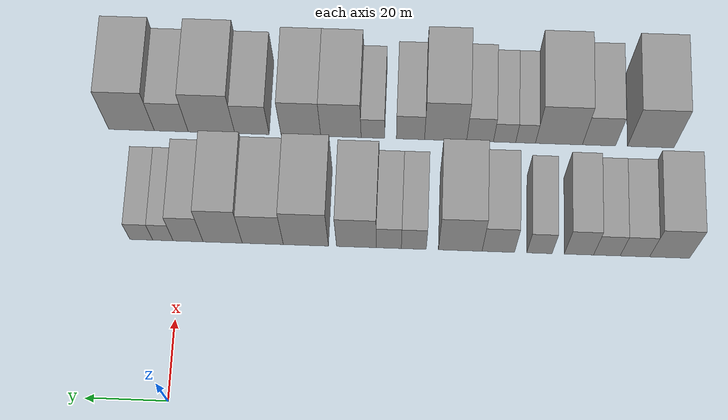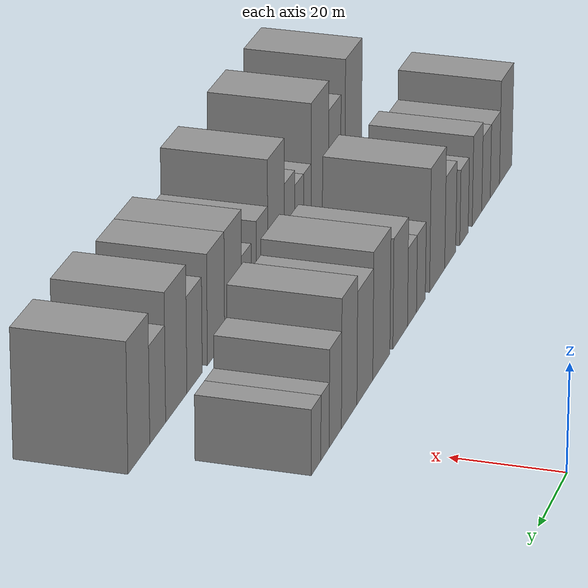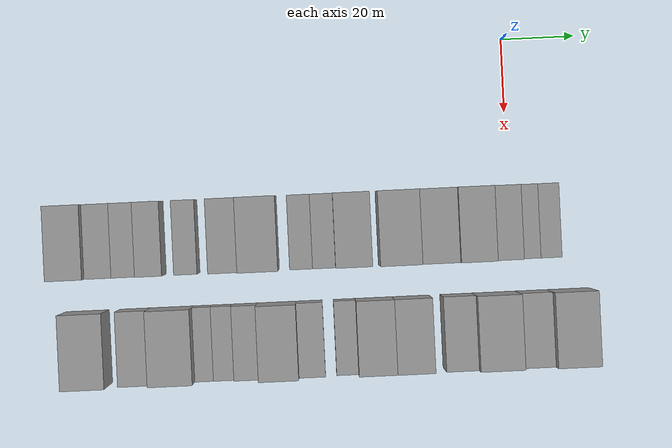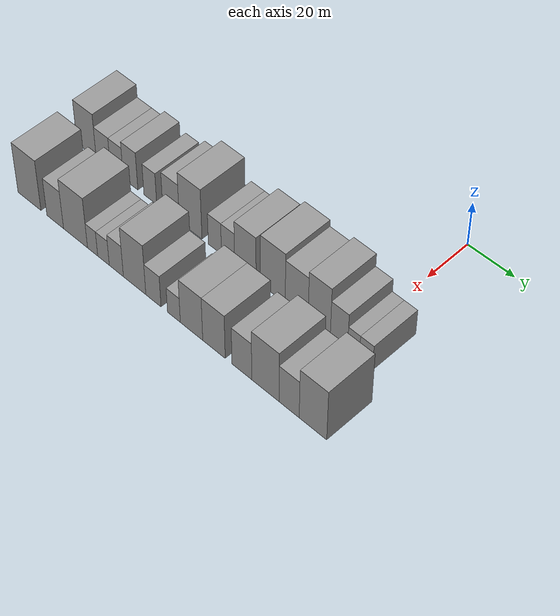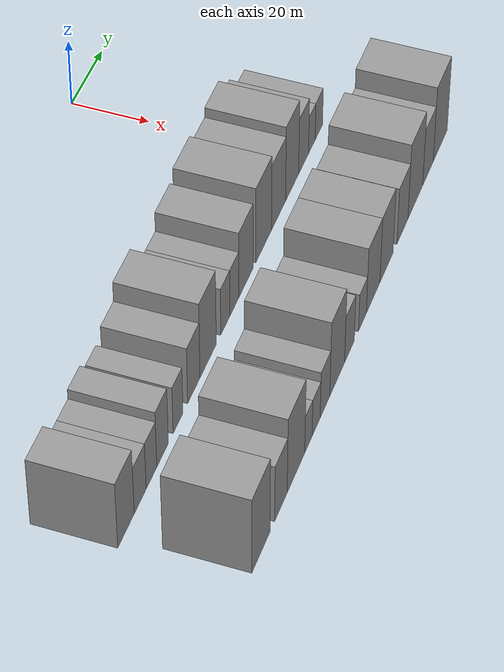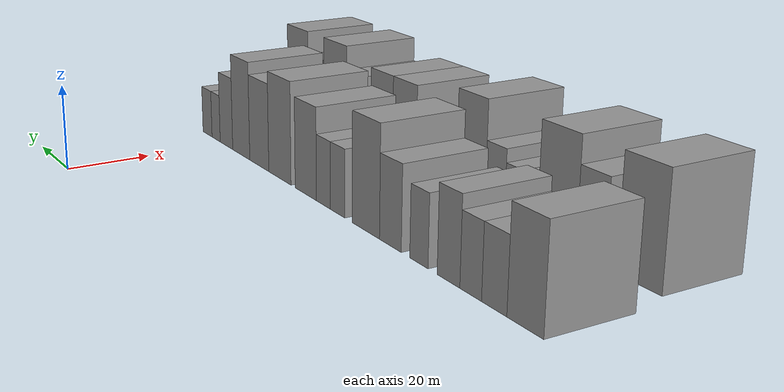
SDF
<sdf version="1.6">
 <world name="default">
  <model name="building_14">
   <static>1</static>
   <pose>50.0000 -120.3150 0 0.000000 0.000000 0.000000</pose>
   <link name="link">
    <pose>0 0 10.50 0 0 0</pose>
    <collision name="collision"><geometry><box><size>20.0000 9.8462 21.0000</size></box></geometry></collision>
    <visual name="visual">
     <cast_shadows>0</cast_shadows>
     <geometry><box><size>20.0000 9.8462 21.0000</size></box></geometry>
     <material>
      <script>
       <uri>model://grey_wall/materials/scripts</uri>
       <uri>model://grey_wall/materials/textures</uri>
       <name>vrc/grey_wall</name>
      </script>
     </material>
    </visual>
   </link>
  </model>
  <model name="building_15">
   <static>1</static>
   <pose>50.0000 -111.7804 0 0.000000 0.000000 0.000000</pose>
   <link name="link">
    <pose>0 0 7.50 0 0 0</pose>
    <collision name="collision"><geometry><box><size>20.0000 7.2230 15.0000</size></box></geometry></collision>
    <visual name="visual">
     <cast_shadows>0</cast_shadows>
     <geometry><box><size>20.0000 7.2230 15.0000</size></box></geometry>
     <material>
      <script>
       <uri>model://grey_wall/materials/scripts</uri>
       <uri>model://grey_wall/materials/textures</uri>
       <name>vrc/grey_wall</name>
      </script>
     </material>
    </visual>
   </link>
  </model>
  <model name="building_16">
   <static>1</static>
   <pose>50.0000 -104.9020 0 0.000000 0.000000 0.000000</pose>
   <link name="link">
    <pose>0 0 7.50 0 0 0</pose>
    <collision name="collision"><geometry><box><size>20.0000 6.5338 15.0000</size></box></geometry></collision>
    <visual name="visual">
     <cast_shadows>0</cast_shadows>
     <geometry><box><size>20.0000 6.5338 15.0000</size></box></geometry>
     <material>
      <script>
       <uri>model://grey_wall/materials/scripts</uri>
       <uri>model://grey_wall/materials/textures</uri>
       <name>vrc/grey_wall</name>
      </script>
     </material>
    </visual>
   </link>
  </model>
  <model name="building_17">
   <static>1</static>
   <pose>50.0000 -98.0287 0 0.000000 0.000000 0.000000</pose>
   <link name="link">
    <pose>0 0 9.00 0 0 0</pose>
    <collision name="collision"><geometry><box><size>20.0000 7.2128 18.0000</size></box></geometry></collision>
    <visual name="visual">
     <cast_shadows>0</cast_shadows>
     <geometry><box><size>20.0000 7.2128 18.0000</size></box></geometry>
     <material>
      <script>
       <uri>model://grey_wall/materials/scripts</uri>
       <uri>model://grey_wall/materials/textures</uri>
       <name>vrc/grey_wall</name>
      </script>
     </material>
    </visual>
   </link>
  </model>
  <model name="building_18">
   <static>1</static>
   <pose>50.0000 -88.2988 0 0.000000 0.000000 0.000000</pose>
   <link name="link">
    <pose>0 0 7.50 0 0 0</pose>
    <collision name="collision"><geometry><box><size>20.0000 6.2469 15.0000</size></box></geometry></collision>
    <visual name="visual">
     <cast_shadows>0</cast_shadows>
     <geometry><box><size>20.0000 6.2469 15.0000</size></box></geometry>
     <material>
      <script>
       <uri>model://grey_wall/materials/scripts</uri>
       <uri>model://grey_wall/materials/textures</uri>
       <name>vrc/grey_wall</name>
      </script>
     </material>
    </visual>
   </link>
  </model>
  <model name="building_19">
   <static>1</static>
   <pose>50.0000 -78.1721 0 0.000000 0.000000 0.000000</pose>
   <link name="link">
    <pose>0 0 9.00 0 0 0</pose>
    <collision name="collision"><geometry><box><size>20.0000 8.0066 18.0000</size></box></geometry></collision>
    <visual name="visual">
     <cast_shadows>0</cast_shadows>
     <geometry><box><size>20.0000 8.0066 18.0000</size></box></geometry>
     <material>
      <script>
       <uri>model://grey_wall/materials/scripts</uri>
       <uri>model://grey_wall/materials/textures</uri>
       <name>vrc/grey_wall</name>
      </script>
     </material>
    </visual>
   </link>
  </model>
  <model name="building_20">
   <static>1</static>
   <pose>50.0000 -68.7891 0 0.000000 0.000000 0.000000</pose>
   <link name="link">
    <pose>0 0 12.00 0 0 0</pose>
    <collision name="collision"><geometry><box><size>20.0000 10.7592 24.0000</size></box></geometry></collision>
    <visual name="visual">
     <cast_shadows>0</cast_shadows>
     <geometry><box><size>20.0000 10.7592 24.0000</size></box></geometry>
     <material>
      <script>
       <uri>model://grey_wall/materials/scripts</uri>
       <uri>model://grey_wall/materials/textures</uri>
       <name>vrc/grey_wall</name>
      </script>
     </material>
    </visual>
   </link>
  </model>
  <model name="building_21">
   <static>1</static>
   <pose>50.0000 -57.3385 0 0.000000 0.000000 0.000000</pose>
   <link name="link">
    <pose>0 0 7.50 0 0 0</pose>
    <collision name="collision"><geometry><box><size>20.0000 6.1420 15.0000</size></box></geometry></collision>
    <visual name="visual">
     <cast_shadows>0</cast_shadows>
     <geometry><box><size>20.0000 6.1420 15.0000</size></box></geometry>
     <material>
      <script>
       <uri>model://grey_wall/materials/scripts</uri>
       <uri>model://grey_wall/materials/textures</uri>
       <name>vrc/grey_wall</name>
      </script>
     </material>
    </visual>
   </link>
  </model>
  <model name="building_22">
   <static>1</static>
   <pose>50.0000 -51.1925 0 0.000000 0.000000 0.000000</pose>
   <link name="link">
    <pose>0 0 7.50 0 0 0</pose>
    <collision name="collision"><geometry><box><size>20.0000 6.1499 15.0000</size></box></geometry></collision>
    <visual name="visual">
     <cast_shadows>0</cast_shadows>
     <geometry><box><size>20.0000 6.1499 15.0000</size></box></geometry>
     <material>
      <script>
       <uri>model://grey_wall/materials/scripts</uri>
       <uri>model://grey_wall/materials/textures</uri>
       <name>vrc/grey_wall</name>
      </script>
     </material>
    </visual>
   </link>
  </model>
  <model name="building_23">
   <static>1</static>
   <pose>50.0000 -43.2024 0 0.000000 0.000000 0.000000</pose>
   <link name="link">
    <pose>0 0 10.50 0 0 0</pose>
    <collision name="collision"><geometry><box><size>20.0000 9.8303 21.0000</size></box></geometry></collision>
    <visual name="visual">
     <cast_shadows>0</cast_shadows>
     <geometry><box><size>20.0000 9.8303 21.0000</size></box></geometry>
     <material>
      <script>
       <uri>model://grey_wall/materials/scripts</uri>
       <uri>model://grey_wall/materials/textures</uri>
       <name>vrc/grey_wall</name>
      </script>
     </material>
    </visual>
   </link>
  </model>
  <model name="building_24">
   <static>1</static>
   <pose>50.0000 -30.7148 0 0.000000 0.000000 0.000000</pose>
   <link name="link">
    <pose>0 0 12.00 0 0 0</pose>
    <collision name="collision"><geometry><box><size>20.0000 11.1449 24.0000</size></box></geometry></collision>
    <visual name="visual">
     <cast_shadows>0</cast_shadows>
     <geometry><box><size>20.0000 11.1449 24.0000</size></box></geometry>
     <material>
      <script>
       <uri>model://grey_wall/materials/scripts</uri>
       <uri>model://grey_wall/materials/textures</uri>
       <name>vrc/grey_wall</name>
      </script>
     </material>
    </visual>
   </link>
  </model>
  <model name="building_25">
   <static>1</static>
   <pose>50.0000 -20.0643 0 0.000000 0.000000 0.000000</pose>
   <link name="link">
    <pose>0 0 10.50 0 0 0</pose>
    <collision name="collision"><geometry><box><size>20.0000 10.1560 21.0000</size></box></geometry></collision>
    <visual name="visual">
     <cast_shadows>0</cast_shadows>
     <geometry><box><size>20.0000 10.1560 21.0000</size></box></geometry>
     <material>
      <script>
       <uri>model://grey_wall/materials/scripts</uri>
       <uri>model://grey_wall/materials/textures</uri>
       <name>vrc/grey_wall</name>
      </script>
     </material>
    </visual>
   </link>
  </model>
  <model name="building_26">
   <static>1</static>
   <pose>50.0000 -10.1497 0 0.000000 0.000000 0.000000</pose>
   <link name="link">
    <pose>0 0 12.00 0 0 0</pose>
    <collision name="collision"><geometry><box><size>20.0000 9.6733 24.0000</size></box></geometry></collision>
    <visual name="visual">
     <cast_shadows>0</cast_shadows>
     <geometry><box><size>20.0000 9.6733 24.0000</size></box></geometry>
     <material>
      <script>
       <uri>model://grey_wall/materials/scripts</uri>
       <uri>model://grey_wall/materials/textures</uri>
       <name>vrc/grey_wall</name>
      </script>
     </material>
    </visual>
   </link>
  </model>
  <model name="building_27">
   <static>1</static>
   <pose>50.0000 -1.5976 0 0.000000 0.000000 0.000000</pose>
   <link name="link">
    <pose>0 0 9.00 0 0 0</pose>
    <collision name="collision"><geometry><box><size>20.0000 7.4308 18.0000</size></box></geometry></collision>
    <visual name="visual">
     <cast_shadows>0</cast_shadows>
     <geometry><box><size>20.0000 7.4308 18.0000</size></box></geometry>
     <material>
      <script>
       <uri>model://grey_wall/materials/scripts</uri>
       <uri>model://grey_wall/materials/textures</uri>
       <name>vrc/grey_wall</name>
      </script>
     </material>
    </visual>
   </link>
  </model>
  <model name="building_28">
   <static>1</static>
   <pose>50.0000 4.6349 0 0.000000 0.000000 0.000000</pose>
   <link name="link">
    <pose>0 0 6.00 0 0 0</pose>
    <collision name="collision"><geometry><box><size>20.0000 5.0342 12.0000</size></box></geometry></collision>
    <visual name="visual">
     <cast_shadows>0</cast_shadows>
     <geometry><box><size>20.0000 5.0342 12.0000</size></box></geometry>
     <material>
      <script>
       <uri>model://grey_wall/materials/scripts</uri>
       <uri>model://grey_wall/materials/textures</uri>
       <name>vrc/grey_wall</name>
      </script>
     </material>
    </visual>
   </link>
  </model>
  <model name="building_29">
   <static>1</static>
   <pose>50.0000 9.9856 0 0.000000 0.000000 0.000000</pose>
   <link name="link">
    <pose>0 0 6.00 0 0 0</pose>
    <collision name="collision"><geometry><box><size>20.0000 5.6673 12.0000</size></box></geometry></collision>
    <visual name="visual">
     <cast_shadows>0</cast_shadows>
     <geometry><box><size>20.0000 5.6673 12.0000</size></box></geometry>
     <material>
      <script>
       <uri>model://grey_wall/materials/scripts</uri>
       <uri>model://grey_wall/materials/textures</uri>
       <name>vrc/grey_wall</name>
      </script>
     </material>
    </visual>
   </link>
  </model>
  <model name="building_80">
   <static>1</static>
   <pose>79.0000 -116.3509 0 0.000000 0.000000 0.000000</pose>
   <link name="link">
    <pose>0 0 12.00 0 0 0</pose>
    <collision name="collision"><geometry><box><size>20.0000 11.7347 24.0000</size></box></geometry></collision>
    <visual name="visual">
     <cast_shadows>0</cast_shadows>
     <geometry><box><size>20.0000 11.7347 24.0000</size></box></geometry>
     <material>
      <script>
       <uri>model://grey_wall/materials/scripts</uri>
       <uri>model://grey_wall/materials/textures</uri>
       <name>vrc/grey_wall</name>
      </script>
     </material>
    </visual>
   </link>
  </model>
  <model name="building_81">
   <static>1</static>
   <pose>79.0000 -103.3023 0 0.000000 0.000000 0.000000</pose>
   <link name="link">
    <pose>0 0 9.00 0 0 0</pose>
    <collision name="collision"><geometry><box><size>20.0000 8.3624 18.0000</size></box></geometry></collision>
    <visual name="visual">
     <cast_shadows>0</cast_shadows>
     <geometry><box><size>20.0000 8.3624 18.0000</size></box></geometry>
     <material>
      <script>
       <uri>model://grey_wall/materials/scripts</uri>
       <uri>model://grey_wall/materials/textures</uri>
       <name>vrc/grey_wall</name>
      </script>
     </material>
    </visual>
   </link>
  </model>
  <model name="building_82">
   <static>1</static>
   <pose>79.0000 -93.1857 0 0.000000 0.000000 0.000000</pose>
   <link name="link">
    <pose>0 0 12.00 0 0 0</pose>
    <collision name="collision"><geometry><box><size>20.0000 11.8708 24.0000</size></box></geometry></collision>
    <visual name="visual">
     <cast_shadows>0</cast_shadows>
     <geometry><box><size>20.0000 11.8708 24.0000</size></box></geometry>
     <material>
      <script>
       <uri>model://grey_wall/materials/scripts</uri>
       <uri>model://grey_wall/materials/textures</uri>
       <name>vrc/grey_wall</name>
      </script>
     </material>
    </visual>
   </link>
  </model>
  <model name="building_83">
   <static>1</static>
   <pose>79.0000 -84.7539 0 0.000000 0.000000 0.000000</pose>
   <link name="link">
    <pose>0 0 6.00 0 0 0</pose>
    <collision name="collision"><geometry><box><size>20.0000 4.9928 12.0000</size></box></geometry></collision>
    <visual name="visual">
     <cast_shadows>0</cast_shadows>
     <geometry><box><size>20.0000 4.9928 12.0000</size></box></geometry>
     <material>
      <script>
       <uri>model://grey_wall/materials/scripts</uri>
       <uri>model://grey_wall/materials/textures</uri>
       <name>vrc/grey_wall</name>
      </script>
     </material>
    </visual>
   </link>
  </model>
  <model name="building_84">
   <static>1</static>
   <pose>79.0000 -79.4468 0 0.000000 0.000000 0.000000</pose>
   <link name="link">
    <pose>0 0 6.00 0 0 0</pose>
    <collision name="collision"><geometry><box><size>20.0000 5.6214 12.0000</size></box></geometry></collision>
    <visual name="visual">
     <cast_shadows>0</cast_shadows>
     <geometry><box><size>20.0000 5.6214 12.0000</size></box></geometry>
     <material>
      <script>
       <uri>model://grey_wall/materials/scripts</uri>
       <uri>model://grey_wall/materials/textures</uri>
       <name>vrc/grey_wall</name>
      </script>
     </material>
    </visual>
   </link>
  </model>
  <model name="building_85">
   <static>1</static>
   <pose>79.0000 -73.2430 0 0.000000 0.000000 0.000000</pose>
   <link name="link">
    <pose>0 0 7.50 0 0 0</pose>
    <collision name="collision"><geometry><box><size>20.0000 6.7861 15.0000</size></box></geometry></collision>
    <visual name="visual">
     <cast_shadows>0</cast_shadows>
     <geometry><box><size>20.0000 6.7861 15.0000</size></box></geometry>
     <material>
      <script>
       <uri>model://grey_wall/materials/scripts</uri>
       <uri>model://grey_wall/materials/textures</uri>
       <name>vrc/grey_wall</name>
      </script>
     </material>
    </visual>
   </link>
  </model>
  <model name="building_86">
   <static>1</static>
   <pose>79.0000 -64.5287 0 0.000000 0.000000 0.000000</pose>
   <link name="link">
    <pose>0 0 12.00 0 0 0</pose>
    <collision name="collision"><geometry><box><size>20.0000 10.6425 24.0000</size></box></geometry></collision>
    <visual name="visual">
     <cast_shadows>0</cast_shadows>
     <geometry><box><size>20.0000 10.6425 24.0000</size></box></geometry>
     <material>
      <script>
       <uri>model://grey_wall/materials/scripts</uri>
       <uri>model://grey_wall/materials/textures</uri>
       <name>vrc/grey_wall</name>
      </script>
     </material>
    </visual>
   </link>
  </model>
  <model name="building_87">
   <static>1</static>
   <pose>79.0000 -55.6554 0 0.000000 0.000000 0.000000</pose>
   <link name="link">
    <pose>0 0 7.50 0 0 0</pose>
    <collision name="collision"><geometry><box><size>20.0000 7.1042 15.0000</size></box></geometry></collision>
    <visual name="visual">
     <cast_shadows>0</cast_shadows>
     <geometry><box><size>20.0000 7.1042 15.0000</size></box></geometry>
     <material>
      <script>
       <uri>model://grey_wall/materials/scripts</uri>
       <uri>model://grey_wall/materials/textures</uri>
       <name>vrc/grey_wall</name>
      </script>
     </material>
    </visual>
   </link>
  </model>
  <model name="building_88">
   <static>1</static>
   <pose>79.0000 -46.1413 0 0.000000 0.000000 0.000000</pose>
   <link name="link">
    <pose>0 0 6.00 0 0 0</pose>
    <collision name="collision"><geometry><box><size>20.0000 5.9240 12.0000</size></box></geometry></collision>
    <visual name="visual">
     <cast_shadows>0</cast_shadows>
     <geometry><box><size>20.0000 5.9240 12.0000</size></box></geometry>
     <material>
      <script>
       <uri>model://grey_wall/materials/scripts</uri>
       <uri>model://grey_wall/materials/textures</uri>
       <name>vrc/grey_wall</name>
      </script>
     </material>
    </visual>
   </link>
  </model>
  <model name="building_89">
   <static>1</static>
   <pose>79.0000 -38.0681 0 0.000000 0.000000 0.000000</pose>
   <link name="link">
    <pose>0 0 10.50 0 0 0</pose>
    <collision name="collision"><geometry><box><size>20.0000 10.2223 21.0000</size></box></geometry></collision>
    <visual name="visual">
     <cast_shadows>0</cast_shadows>
     <geometry><box><size>20.0000 10.2223 21.0000</size></box></geometry>
     <material>
      <script>
       <uri>model://grey_wall/materials/scripts</uri>
       <uri>model://grey_wall/materials/textures</uri>
       <name>vrc/grey_wall</name>
      </script>
     </material>
    </visual>
   </link>
  </model>
  <model name="building_90">
   <static>1</static>
   <pose>79.0000 -27.9151 0 0.000000 0.000000 0.000000</pose>
   <link name="link">
    <pose>0 0 10.50 0 0 0</pose>
    <collision name="collision"><geometry><box><size>20.0000 10.0837 21.0000</size></box></geometry></collision>
    <visual name="visual">
     <cast_shadows>0</cast_shadows>
     <geometry><box><size>20.0000 10.0837 21.0000</size></box></geometry>
     <material>
      <script>
       <uri>model://grey_wall/materials/scripts</uri>
       <uri>model://grey_wall/materials/textures</uri>
       <name>vrc/grey_wall</name>
      </script>
     </material>
    </visual>
   </link>
  </model>
  <model name="building_91">
   <static>1</static>
   <pose>79.0000 -15.5219 0 0.000000 0.000000 0.000000</pose>
   <link name="link">
    <pose>0 0 9.00 0 0 0</pose>
    <collision name="collision"><geometry><box><size>20.0000 8.7028 18.0000</size></box></geometry></collision>
    <visual name="visual">
     <cast_shadows>0</cast_shadows>
     <geometry><box><size>20.0000 8.7028 18.0000</size></box></geometry>
     <material>
      <script>
       <uri>model://grey_wall/materials/scripts</uri>
       <uri>model://grey_wall/materials/textures</uri>
       <name>vrc/grey_wall</name>
      </script>
     </material>
    </visual>
   </link>
  </model>
  <model name="building_92">
   <static>1</static>
   <pose>79.0000 -5.2581 0 0.000000 0.000000 0.000000</pose>
   <link name="link">
    <pose>0 0 12.00 0 0 0</pose>
    <collision name="collision"><geometry><box><size>20.0000 11.8248 24.0000</size></box></geometry></collision>
    <visual name="visual">
     <cast_shadows>0</cast_shadows>
     <geometry><box><size>20.0000 11.8248 24.0000</size></box></geometry>
     <material>
      <script>
       <uri>model://grey_wall/materials/scripts</uri>
       <uri>model://grey_wall/materials/textures</uri>
       <name>vrc/grey_wall</name>
      </script>
     </material>
    </visual>
   </link>
  </model>
  <model name="building_93">
   <static>1</static>
   <pose>79.0000 4.9552 0 0.000000 0.000000 0.000000</pose>
   <link name="link">
    <pose>0 0 9.00 0 0 0</pose>
    <collision name="collision"><geometry><box><size>20.0000 8.6018 18.0000</size></box></geometry></collision>
    <visual name="visual">
     <cast_shadows>0</cast_shadows>
     <geometry><box><size>20.0000 8.6018 18.0000</size></box></geometry>
     <material>
      <script>
       <uri>model://grey_wall/materials/scripts</uri>
       <uri>model://grey_wall/materials/textures</uri>
       <name>vrc/grey_wall</name>
      </script>
     </material>
    </visual>
   </link>
  </model>
  <model name="building_94">
   <static>1</static>
   <pose>79.0000 15.0483 0 0.000000 0.000000 0.000000</pose>
   <link name="link">
    <pose>0 0 12.00 0 0 0</pose>
    <collision name="collision"><geometry><box><size>20.0000 11.5844 24.0000</size></box></geometry></collision>
    <visual name="visual">
     <cast_shadows>0</cast_shadows>
     <geometry><box><size>20.0000 11.5844 24.0000</size></box></geometry>
     <material>
      <script>
       <uri>model://grey_wall/materials/scripts</uri>
       <uri>model://grey_wall/materials/textures</uri>
       <name>vrc/grey_wall</name>
      </script>
     </material>
    </visual>
   </link>
  </model>
 </world>
</sdf>
